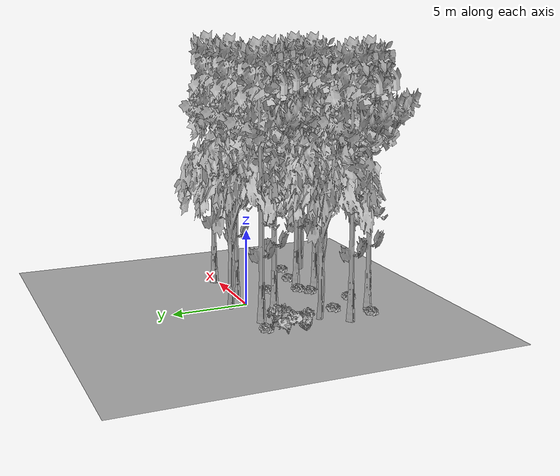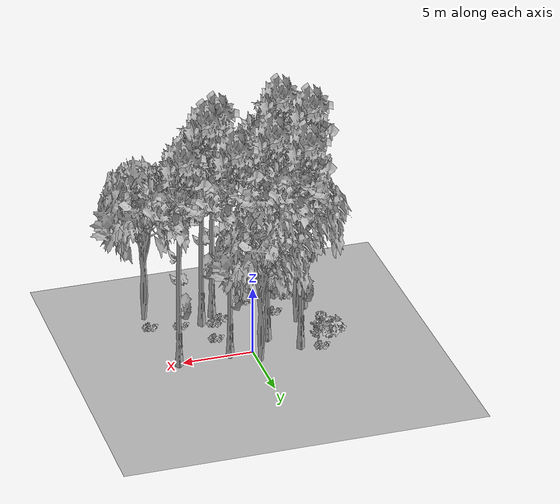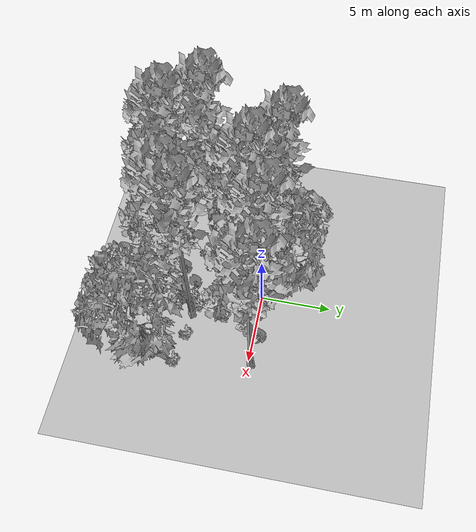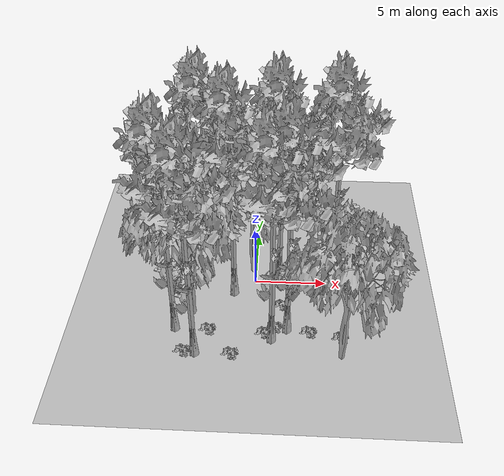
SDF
<sdf version="1.7">
 <world name="default">
  <model name="ground_plane">
   <static>1</static>
   <link name="link">
    <collision name="collision">
     <pose>-50 0 0 0 -0 0</pose>
     <geometry><plane><normal>0 0 1</normal><size>80 80</size></plane></geometry>
     <surface><contact><ode><min_depth>0.01</min_depth><max_vel>0</max_vel></ode></contact></surface>
    </collision>
    <visual name="grass">
     <cast_shadows>0</cast_shadows>
     <geometry>
      <mesh>
       <scale>0.46714285714285714 0.46714285714285714 0.1</scale>
       <uri>file://grass_plane/meshes/grass_plane.dae</uri>
      </mesh>
     </geometry>
    </visual>
   </link>
  </model>
  <model name="Tree 18">
   <static>1</static>
   <pose>-4.235619558732324 -3.2850442022932214 0 1.57079 -0 0</pose>
   <link name="link">
    <collision name="collision">
     <geometry><mesh><scale>3.5 5 3.5</scale><uri>model://tree_2/meshes/tree_2.obj</uri></mesh></geometry>
    </collision>
    <visual name="visual">
     <geometry><mesh><scale>3.5 5 3.5</scale><uri>model://tree_2/meshes/tree_2.obj</uri></mesh></geometry>
    </visual>
   </link>
  </model>
  <model name="Tree 77">
   <static>1</static>
   <pose>5.328289305776231 0.24513602886433716 0 1.57079 -0 0</pose>
   <link name="link">
    <collision name="collision">
     <geometry><mesh><scale>3.5 5 3.5</scale><uri>model://tree_9/meshes/tree_9.obj</uri></mesh></geometry>
    </collision>
    <visual name="visual">
     <geometry><mesh><scale>3.5 5 3.5</scale><uri>model://tree_9/meshes/tree_9.obj</uri></mesh></geometry>
    </visual>
   </link>
  </model>
  <model name="Tree 108">
   <static>1</static>
   <pose>5.805453113058903 -6.69384305663894 0 1.57079 -0 0</pose>
   <link name="link">
    <collision name="collision">
     <geometry><mesh><scale>3.5 5 3.5</scale><uri>model://tree_2/meshes/tree_2.obj</uri></mesh></geometry>
    </collision>
    <visual name="visual">
     <geometry><mesh><scale>3.5 5 3.5</scale><uri>model://tree_2/meshes/tree_2.obj</uri></mesh></geometry>
    </visual>
   </link>
  </model>
  <model name="Tree 223">
   <static>1</static>
   <pose>2.3078178173316246 -4.649961650890589 0 1.57079 -0 0</pose>
   <link name="link">
    <collision name="collision">
     <geometry><mesh><scale>3.5 5 3.5</scale><uri>model://tree_9/meshes/tree_9.obj</uri></mesh></geometry>
    </collision>
    <visual name="visual">
     <geometry><mesh><scale>3.5 5 3.5</scale><uri>model://tree_9/meshes/tree_9.obj</uri></mesh></geometry>
    </visual>
   </link>
  </model>
  <model name="Tree 257">
   <static>1</static>
   <pose>-5.187373954705819 -4.833053389982219 0 1.57079 -0 0</pose>
   <link name="link">
    <collision name="collision">
     <geometry><mesh><scale>3.5 5 3.5</scale><uri>model://tree_9/meshes/tree_9.obj</uri></mesh></geometry>
    </collision>
    <visual name="visual">
     <geometry><mesh><scale>3.5 5 3.5</scale><uri>model://tree_9/meshes/tree_9.obj</uri></mesh></geometry>
    </visual>
   </link>
  </model>
  <model name="Tree 306">
   <static>1</static>
   <pose>-1.4426952951273648 -1.3276463560605194 0 1.57079 -0 0</pose>
   <link name="link">
    <collision name="collision">
     <geometry><mesh><scale>3.5 5 3.5</scale><uri>model://tree_9/meshes/tree_9.obj</uri></mesh></geometry>
    </collision>
    <visual name="visual">
     <geometry><mesh><scale>3.5 5 3.5</scale><uri>model://tree_9/meshes/tree_9.obj</uri></mesh></geometry>
    </visual>
   </link>
  </model>
  <model name="Tree 311">
   <static>1</static>
   <pose>1.6611417788273215 0.0562508535470414 0 1.57079 -0 0</pose>
   <link name="link">
    <collision name="collision">
     <geometry><mesh><scale>3.5 5 3.5</scale><uri>model://tree_9/meshes/tree_9.obj</uri></mesh></geometry>
    </collision>
    <visual name="visual">
     <geometry><mesh><scale>3.5 5 3.5</scale><uri>model://tree_9/meshes/tree_9.obj</uri></mesh></geometry>
    </visual>
   </link>
  </model>
  <model name="Tree 464">
   <static>1</static>
   <pose>-3.317962639391226 0.3562539375949214 0 1.57079 -0 0</pose>
   <link name="link">
    <collision name="collision">
     <geometry><mesh><scale>3.5 5 3.5</scale><uri>model://tree_9/meshes/tree_9.obj</uri></mesh></geometry>
    </collision>
    <visual name="visual">
     <geometry><mesh><scale>3.5 5 3.5</scale><uri>model://tree_9/meshes/tree_9.obj</uri></mesh></geometry>
    </visual>
   </link>
  </model>
  <model name="Tree 514">
   <static>1</static>
   <pose>-0.30299876113728885 1.1327759782907592 0 1.57079 -0 0</pose>
   <link name="link">
    <collision name="collision">
     <geometry><mesh><scale>3.5 5 3.5</scale><uri>model://tree_2/meshes/tree_2.obj</uri></mesh></geometry>
    </collision>
    <visual name="visual">
     <geometry><mesh><scale>3.5 5 3.5</scale><uri>model://tree_2/meshes/tree_2.obj</uri></mesh></geometry>
    </visual>
   </link>
  </model>
  <model name="Tree 521">
   <static>1</static>
   <pose>-3.649161421628307 -6.905012720308022 0 1.57079 -0 0</pose>
   <link name="link">
    <collision name="collision">
     <geometry><mesh><scale>3.5 5 3.5</scale><uri>model://tree_9/meshes/tree_9.obj</uri></mesh></geometry>
    </collision>
    <visual name="visual">
     <geometry><mesh><scale>3.5 5 3.5</scale><uri>model://tree_9/meshes/tree_9.obj</uri></mesh></geometry>
    </visual>
   </link>
  </model>
  <model name="Tree 573">
   <static>1</static>
   <pose>1.2978772593248138 -5.555830509845578 0 1.57079 -0 0</pose>
   <link name="link">
    <collision name="collision">
     <geometry><mesh><scale>3.5 5 3.5</scale><uri>model://tree_9/meshes/tree_9.obj</uri></mesh></geometry>
    </collision>
    <visual name="visual">
     <geometry><mesh><scale>3.5 5 3.5</scale><uri>model://tree_9/meshes/tree_9.obj</uri></mesh></geometry>
    </visual>
   </link>
  </model>
  <model name="Bush 7">
   <static>1</static>
   <pose>-3.0027370671854854 -4.8251536760415235 0 1.57079 -0 0</pose>
   <link name="link">
    <collision name="collision">
     <geometry><mesh><scale>2 2 2</scale><uri>model://bush_2/meshes/bush_2.obj</uri></mesh></geometry>
     <surface><contact><collide_without_contact>false</collide_without_contact></contact></surface>
    </collision>
    <visual name="visual">
     <geometry><mesh><scale>2 2 2</scale><uri>model://bush_2/meshes/bush_2.obj</uri></mesh></geometry>
    </visual>
   </link>
  </model>
  <model name="Bush 137">
   <static>1</static>
   <pose>5.900752787851175 -5.184845835419807 0 1.57079 -0 0</pose>
   <link name="link">
    <collision name="collision">
     <geometry><mesh><scale>2 2 2</scale><uri>model://bush_2/meshes/bush_2.obj</uri></mesh></geometry>
     <surface><contact><collide_without_contact>false</collide_without_contact></contact></surface>
    </collision>
    <visual name="visual">
     <geometry><mesh><scale>2 2 2</scale><uri>model://bush_2/meshes/bush_2.obj</uri></mesh></geometry>
    </visual>
   </link>
  </model>
  <model name="Bush 159">
   <static>1</static>
   <pose>-4.763580707896743 0.6081871605898641 0 1.57079 -0 0</pose>
   <link name="link">
    <collision name="collision">
     <geometry><mesh><scale>2 2 2</scale><uri>model://bush_2/meshes/bush_2.obj</uri></mesh></geometry>
     <surface><contact><collide_without_contact>false</collide_without_contact></contact></surface>
    </collision>
    <visual name="visual">
     <geometry><mesh><scale>2 2 2</scale><uri>model://bush_2/meshes/bush_2.obj</uri></mesh></geometry>
    </visual>
   </link>
  </model>
  <model name="Bush 189">
   <static>1</static>
   <pose>1.935361333676049 -2.416219971075421 0 1.57079 -0 0</pose>
   <link name="link">
    <collision name="collision">
     <geometry><mesh><scale>2 2 2</scale><uri>model://bush_2/meshes/bush_2.obj</uri></mesh></geometry>
     <surface><contact><collide_without_contact>false</collide_without_contact></contact></surface>
    </collision>
    <visual name="visual">
     <geometry><mesh><scale>2 2 2</scale><uri>model://bush_2/meshes/bush_2.obj</uri></mesh></geometry>
    </visual>
   </link>
  </model>
  <model name="Bush 210">
   <static>1</static>
   <pose>3.781387812887033 -4.781877118632146 0 1.57079 -0 0</pose>
   <link name="link">
    <collision name="collision">
     <geometry><mesh><scale>2 2 2</scale><uri>model://bush_2/meshes/bush_2.obj</uri></mesh></geometry>
     <surface><contact><collide_without_contact>false</collide_without_contact></contact></surface>
    </collision>
    <visual name="visual">
     <geometry><mesh><scale>2 2 2</scale><uri>model://bush_2/meshes/bush_2.obj</uri></mesh></geometry>
    </visual>
   </link>
  </model>
  <model name="Bush 245">
   <static>1</static>
   <pose>-5.751740815768905 -0.35603411175719657 0 1.57079 -0 0</pose>
   <link name="link">
    <collision name="collision">
     <geometry><mesh><scale>2 2 2</scale><uri>model://bush_1/meshes/bush_1.obj</uri></mesh></geometry>
     <surface><contact><collide_without_contact>false</collide_without_contact></contact></surface>
    </collision>
    <visual name="visual">
     <geometry><mesh><scale>2 2 2</scale><uri>model://bush_1/meshes/bush_1.obj</uri></mesh></geometry>
    </visual>
   </link>
  </model>
  <model name="Bush 406">
   <static>1</static>
   <pose>-4.628848909753998 0.14583621378990586 0 1.57079 -0 0</pose>
   <link name="link">
    <collision name="collision">
     <geometry><mesh><scale>2 2 2</scale><uri>model://bush_5/meshes/bush_5.obj</uri></mesh></geometry>
     <surface><contact><collide_without_contact>false</collide_without_contact></contact></surface>
    </collision>
    <visual name="visual">
     <geometry><mesh><scale>2 2 2</scale><uri>model://bush_5/meshes/bush_5.obj</uri></mesh></geometry>
    </visual>
   </link>
  </model>
  <model name="Bush 416">
   <static>1</static>
   <pose>-5.55295578597682 -1.6394568990309395 0 1.57079 -0 0</pose>
   <link name="link">
    <collision name="collision">
     <geometry><mesh><scale>2 2 2</scale><uri>model://bush_4/meshes/bush_4.obj</uri></mesh></geometry>
     <surface><contact><collide_without_contact>false</collide_without_contact></contact></surface>
    </collision>
    <visual name="visual">
     <geometry><mesh><scale>2 2 2</scale><uri>model://bush_4/meshes/bush_4.obj</uri></mesh></geometry>
    </visual>
   </link>
  </model>
  <model name="Bush 514">
   <static>1</static>
   <pose>-4.4762073112026 -6.747220097767119 0 1.57079 -0 0</pose>
   <link name="link">
    <collision name="collision">
     <geometry><mesh><scale>2 2 2</scale><uri>model://bush_2/meshes/bush_2.obj</uri></mesh></geometry>
     <surface><contact><collide_without_contact>false</collide_without_contact></contact></surface>
    </collision>
    <visual name="visual">
     <geometry><mesh><scale>2 2 2</scale><uri>model://bush_2/meshes/bush_2.obj</uri></mesh></geometry>
    </visual>
   </link>
  </model>
  <model name="Bush 577">
   <static>1</static>
   <pose>-1.3386253283858736 -6.831986119174317 0 1.57079 -0 0</pose>
   <link name="link">
    <collision name="collision">
     <geometry><mesh><scale>2 2 2</scale><uri>model://bush_2/meshes/bush_2.obj</uri></mesh></geometry>
     <surface><contact><collide_without_contact>false</collide_without_contact></contact></surface>
    </collision>
    <visual name="visual">
     <geometry><mesh><scale>2 2 2</scale><uri>model://bush_2/meshes/bush_2.obj</uri></mesh></geometry>
    </visual>
   </link>
  </model>
  <model name="Bush 578">
   <static>1</static>
   <pose>1.459652341624654 -4.435495462173947 0 1.57079 -0 0</pose>
   <link name="link">
    <collision name="collision">
     <geometry><mesh><scale>2 2 2</scale><uri>model://bush_2/meshes/bush_2.obj</uri></mesh></geometry>
     <surface><contact><collide_without_contact>false</collide_without_contact></contact></surface>
    </collision>
    <visual name="visual">
     <geometry><mesh><scale>2 2 2</scale><uri>model://bush_2/meshes/bush_2.obj</uri></mesh></geometry>
    </visual>
   </link>
  </model>
  <model name="Bush 617">
   <static>1</static>
   <pose>0.7727517725154129 -4.977280849839438 0 1.57079 -0 0</pose>
   <link name="link">
    <collision name="collision">
     <geometry><mesh><scale>2 2 2</scale><uri>model://bush_2/meshes/bush_2.obj</uri></mesh></geometry>
     <surface><contact><collide_without_contact>false</collide_without_contact></contact></surface>
    </collision>
    <visual name="visual">
     <geometry><mesh><scale>2 2 2</scale><uri>model://bush_2/meshes/bush_2.obj</uri></mesh></geometry>
    </visual>
   </link>
  </model>
 </world>
</sdf>
